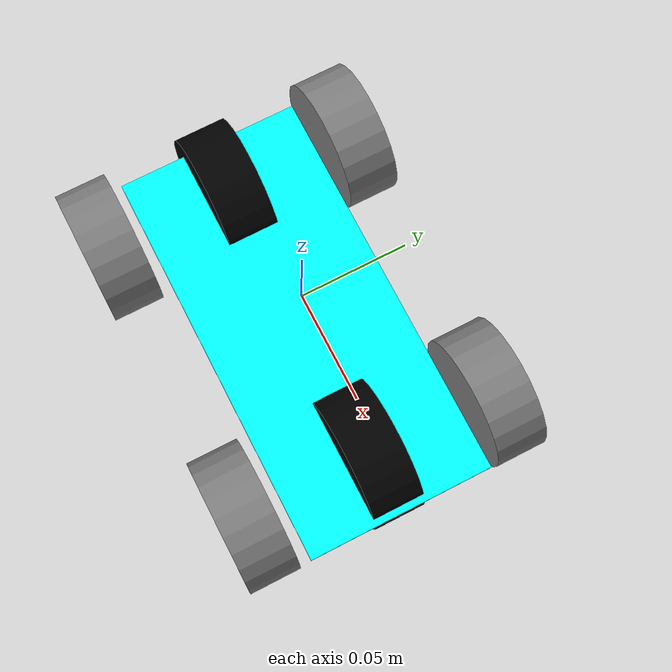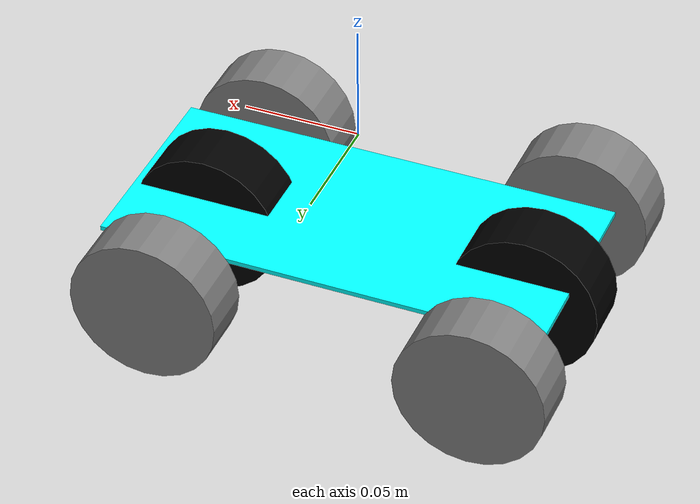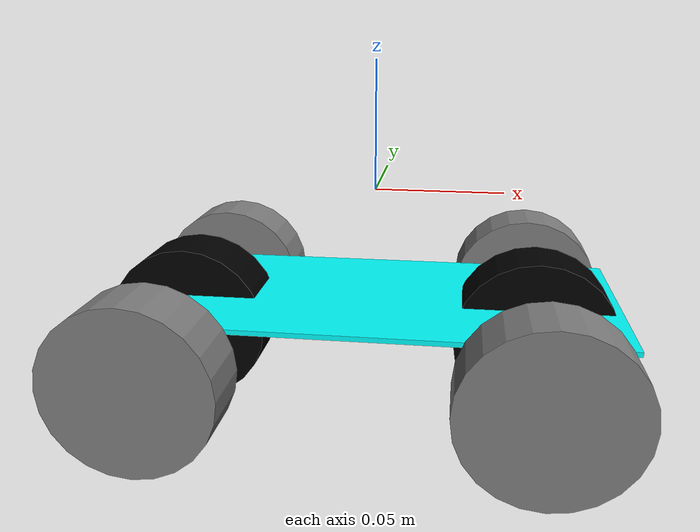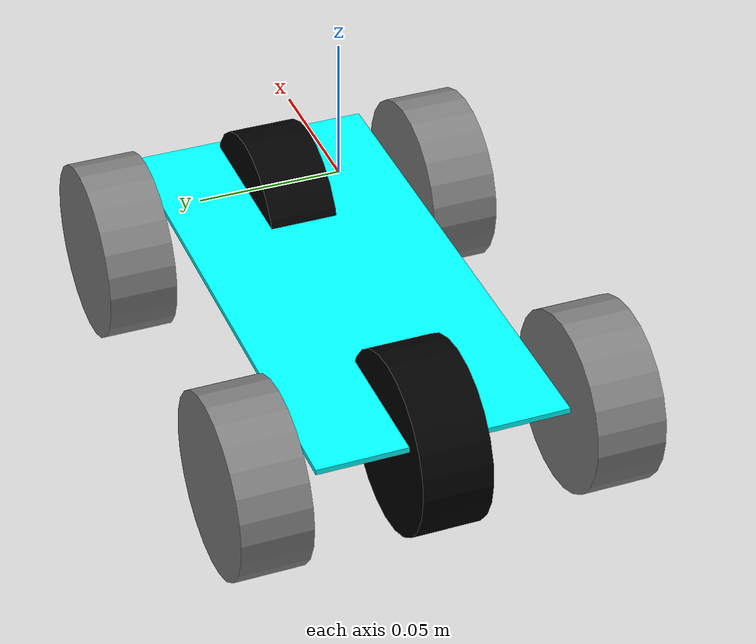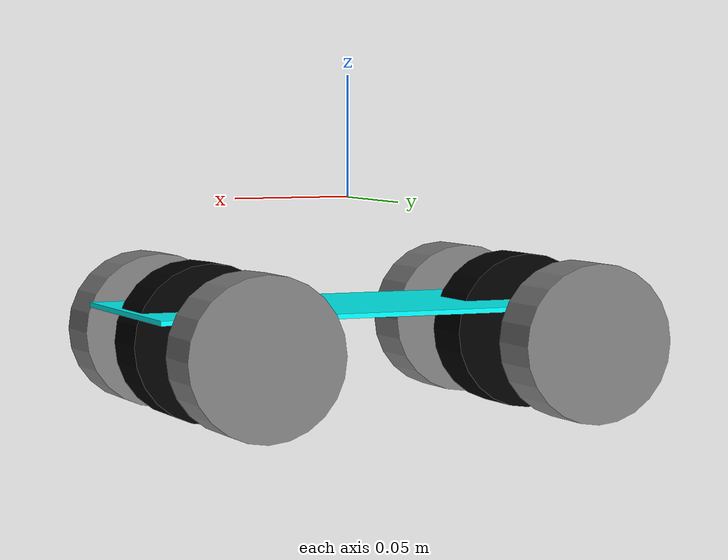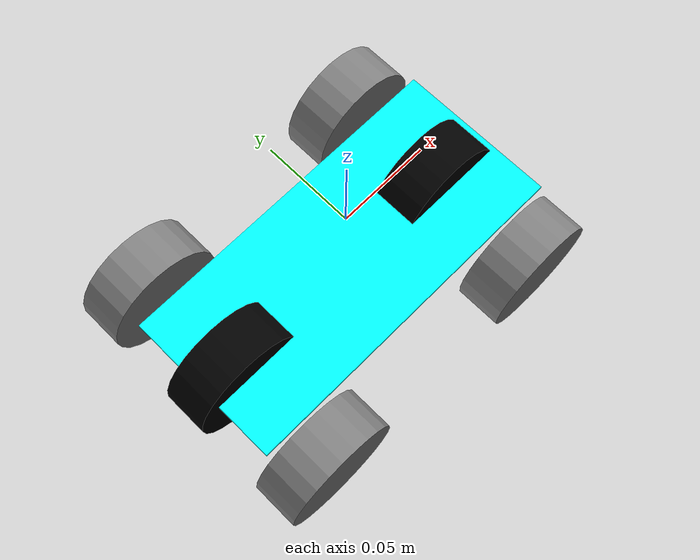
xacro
<?xml version="1.0"?>
<!-- 4 Wheel Robot with front steering and rear drive -->
<robot xmlns:xacro="http://www.ros.org/wiki/xacro" name="carlikebot_robot">

  <xacro:arg name="use_mock_hardware" default="false" />
  <xacro:arg name="mock_sensor_commands" default="false" />
  <xacro:arg name="use_gazebo_classic" default="false" />

  <xacro:include filename="robot/robot_description.urdf.xacro" />

  <!-- Import carlikebot ros2_control description -->
  <xacro:include filename="robot/robot.ros2_control.xacro" />

  <xacro:carlikebot />

  <xacro:carlikebot_ros2_control
    name="CarlikeBot"
    use_mock_hardware="$(arg use_mock_hardware)"
    mock_sensor_commands="$(arg mock_sensor_commands)"
    use_gazebo_classic="$(arg use_gazebo_classic)" />

  <xacro:if value="$(arg use_gazebo_classic)">
    <!-- Import Gazebo Classic definitions + plugin -->
    <xacro:include filename="robot/robot.gazebo.xacro" />
    <xacro:robot_gazebo />
  </xacro:if>

</robot>

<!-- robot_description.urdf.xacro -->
<robot xmlns:xacro="http://ros.org/wiki/xacro">

    <xacro:macro name="carlikebot" >

    <!-- Define robot constants -->
    <xacro:property name="base_width" value="0.09"/>
    <xacro:property name="base_length" value="0.195"/>
    <xacro:property name="base_height" value="0.002"/>
    <xacro:property name="base_mass" value="4.0" /> <!-- arbitrary value for base mass -->

    <xacro:property name="wheel_radius" value="0.0325"/>
    <xacro:property name="wheel_width" value="0.025"/>
    <xacro:property name="wheel_ygap" value="0.005"/>
    <xacro:property name="wheel_zoff" value="0.0125"/>
    <xacro:property name="wheel_back_xoff" value="0.0775"/>
    <xacro:property name="wheel_front_xoff" value="0.065"/>
    <xacro:property name="wheelbase" value="0.145"/>
    <xacro:property name="wheel_mass" value="0.34055" /> <!-- arbitrary value for wheel mass -->

    <!-- Robot Base -->
    <link name="base_link">
        <collision>
            <origin xyz="0 0 0" rpy="0 0 0"/>
            <geometry>
                <box size="${base_length} ${base_width} ${base_height}"/>
            </geometry>
        </collision>

        <visual>
            <origin xyz="0 0 0" rpy="0 0 0"/>
            <geometry>
                <box size="${base_length} ${base_width} ${base_height}"/>
            </geometry>
            <material name="Cyan">
                <color rgba="0 1.0 1.0 1.0"/>
            </material>
        </visual>

        <inertial>
            <origin xyz="0 0 0" rpy="0 0 0"/>
            <mass value="${base_mass}"/>
                <inertia
                ixx="0.000270" ixy="0.0" ixz="0.0"
                iyy="0.000270" iyz="0.0"
                izz="0.000426"/>
        </inertial>
    </link>

    <!-- Robot Footprint -->
    <link name="base_footprint"/>

    <joint name="base_joint" type="fixed">
        <parent link="base_footprint"/>
        <child link="base_link"/>
        <origin xyz="0.0 0.0 ${-(wheel_radius+wheel_zoff)}" rpy="0 0 0"/>
    </joint>

    <!-- Virtual Wheels -->
    <xacro:macro name="virtual_wheel" params="prefix x_reflect">
        <link name="virtual_${prefix}_wheel">
            <visual>
                <origin xyz="0 0 0" rpy="${pi/2} 0 0"/>
                <geometry>
                <cylinder length="${wheel_width}" radius="${wheel_radius}"/>
                </geometry>
                <material name="Invisible">
                    <color rgba="0.0 0.0 0.0 0.0"/>
                </material>
            </visual>
        </link>

        <xacro:if value="${x_reflect == -1}">
            <xacro:property name="joint_type" value="continuous"/>
        </xacro:if>

        <xacro:if value="${x_reflect == 1}">
            <xacro:property name="joint_type" value="revolute"/>
        </xacro:if>

        <joint name="virtual_${prefix}_wheel_joint" type="${joint_type}">
            <parent link="base_link"/>
            <child link="virtual_${prefix}_wheel"/>
            <xacro:if value="${x_reflect == -1}">
                <origin xyz="${x_reflect*wheel_back_xoff} 0 ${-wheel_zoff}" rpy="0 0 0"/>
                <axis xyz="1 0 0"/>
                <limit effort="100.0" velocity="100.0"/>
            </xacro:if>
            <xacro:if value="${x_reflect == 1}">
                <origin xyz="${wheel_front_xoff} 0 ${-wheel_zoff}" rpy="0 0 0"/>
                <axis xyz="0 0 1"/>
                <limit lower="-0.4" upper="0.4" effort="100.0" velocity="0.0"/>
            </xacro:if>
        </joint>
    </xacro:macro>

    <xacro:virtual_wheel prefix="rear" x_reflect="-1" />
    <xacro:virtual_wheel prefix="front" x_reflect="1" />

    <!-- Real Wheels -->
    <xacro:macro name="wheel" params="prefix x_reflect y_reflect">
        <link name="${prefix}_link">
            <collision>
                <origin xyz="0 0 0" rpy="${pi/2} 0 0"/>
                <geometry>
                    <cylinder length="${wheel_width}" radius="${wheel_radius}"/>
                </geometry>
            </collision>

            <visual>
            <origin xyz="0 0 0" rpy="${pi/2} 0 0"/>
            <geometry>
                <cylinder radius="${wheel_radius}" length="${wheel_width}"/>
            </geometry>
            <material name="Gray">
                <color rgba="0.5 0.5 0.5 1.0"/>
            </material>
            </visual>

            <inertial>
                <origin xyz="0 0 0" rpy="${pi/2} 0 0"/>
                <mass value="${wheel_mass}"/>
                <inertia
                    ixx="0.000270" ixy="0.0" ixz="0.0"
                    iyy="0.000270" iyz="0.0"
                    izz="0.000426"/>
            </inertial>
        </link>

        <joint name="${prefix}_joint" type="continuous">
            <parent link="base_link"/>
            <child link="${prefix}_link"/>
            <xacro:if value="${x_reflect == -1}">
                <origin xyz="${x_reflect*wheel_back_xoff} ${y_reflect*(base_width/2+wheel_ygap+wheel_width/2)} ${-wheel_zoff}" rpy="0 0 0"/>
                <mimic joint="virtual_rear_wheel_joint" multiplier="1.0" offset="0.0"/>
            </xacro:if>
            <xacro:if value="${x_reflect == 1}">
                <origin xyz="${wheel_front_xoff} ${y_reflect*(base_width/2+wheel_ygap+wheel_width/2)} ${-wheel_zoff}" rpy="0 0 0"/>
                <mimic joint="virtual_front_wheel_joint" multiplier="1.0" offset="0.0"/>
            </xacro:if>
            <axis xyz="0 1 0"/>
        </joint>

    </xacro:macro>

    <xacro:wheel prefix="backwhl_l" x_reflect="-1" y_reflect="1" />
    <xacro:wheel prefix="backwhl_r" x_reflect="-1" y_reflect="-1" />
    <xacro:wheel prefix="frontwhl_l" x_reflect="1" y_reflect="1" />
    <xacro:wheel prefix="frontwhl_r" x_reflect="1" y_reflect="-1" />

    </xacro:macro>

</robot>
